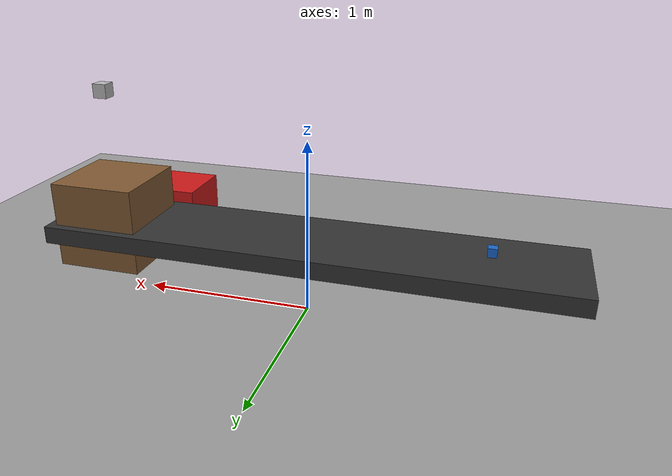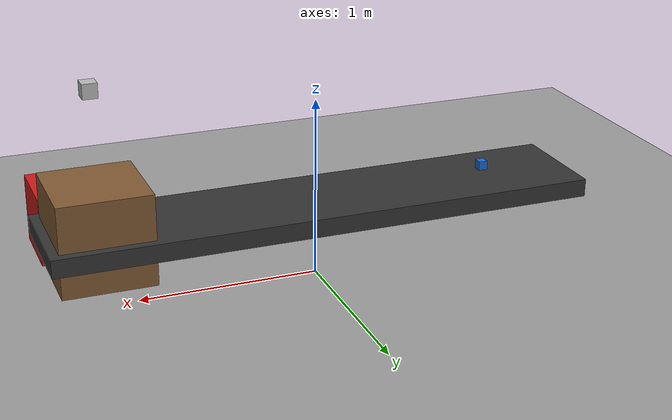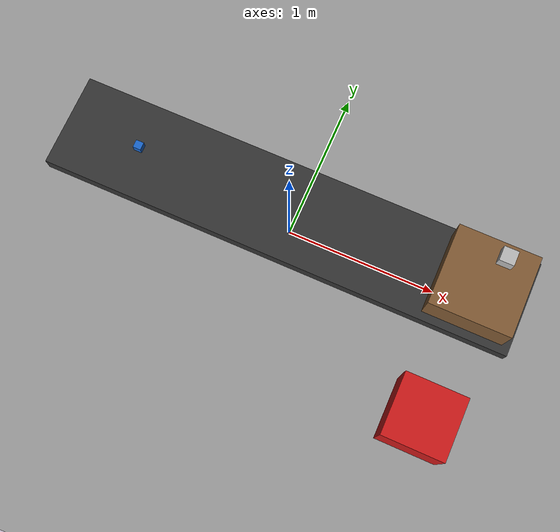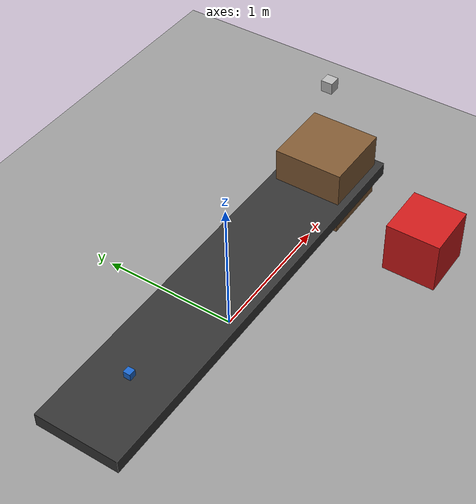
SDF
<?xml version="1.0" ?>
<sdf version="1.9">
  <world name="assembly_station">

    <physics name="1ms" type="ignored">
      <max_step_size>0.001</max_step_size>
      <real_time_factor>1.0</real_time_factor>
    </physics>

    <plugin filename="gz-sim-physics-system" name="gz::sim::systems::Physics" />
    <plugin filename="gz-sim-scene-broadcaster-system" name="gz::sim::systems::SceneBroadcaster" />
    <plugin filename="gz-sim-sensors-system" name="gz::sim::systems::Sensors">
      <render_engine>ogre2</render_engine>
    </plugin>
    <plugin filename="gz-sim-user-commands-system" name="gz::sim::systems::UserCommands" />

    <light type="directional" name="sun">
      <cast_shadows>true</cast_shadows>
      <pose>0 0 10 0 0 0</pose>
      <diffuse>0.8 0.8 0.8 1</diffuse>
      <specular>0.2 0.2 0.2 1</specular>
      <direction>-0.5 0.1 -0.9</direction>
    </light>

    <model name="ground_plane">
      <static>true</static>
      <link name="link">
        <collision name="collision">
          <geometry><plane><normal>0 0 1</normal><size>20 20</size></plane></geometry>
        </collision>
        <visual name="visual">
          <geometry><plane><normal>0 0 1</normal><size>20 20</size></plane></geometry>
          <material>
            <ambient>0.6 0.6 0.6 1</ambient>
            <diffuse>0.6 0.6 0.6 1</diffuse>
          </material>
        </visual>
      </link>
    </model>

    <!-- Conveyor belt: simplified as a static box; part motion driven by
         the PLC/Factory I/O bridge in the full deployment, or by a
         plugin-driven velocity in pure-Gazebo testing. -->
    <model name="conveyor_belt">
      <static>true</static>
      <pose>0 0 0.4 0 0 0</pose>
      <link name="belt_link">
        <collision name="collision">
          <geometry><box><size>3.0 0.6 0.1</size></box></geometry>
        </collision>
        <visual name="visual">
          <geometry><box><size>3.0 0.6 0.1</size></box></geometry>
          <material>
            <ambient>0.2 0.2 0.2 1</ambient>
            <diffuse>0.2 0.2 0.2 1</diffuse>
          </material>
        </visual>
      </link>
    </model>

    <!-- Pick station table: co-located with the conveyor_pick_point frame
         referenced by pick_place_node -->
    <model name="pick_station_table">
      <static>true</static>
      <pose>1.2 0 0.45 0 0 0</pose>
      <link name="table_link">
        <collision name="collision">
          <geometry><box><size>0.5 0.5 0.5</size></box></geometry>
        </collision>
        <visual name="visual">
          <geometry><box><size>0.5 0.5 0.5</size></box></geometry>
          <material>
            <ambient>0.5 0.35 0.2 1</ambient>
            <diffuse>0.5 0.35 0.2 1</diffuse>
          </material>
        </visual>
      </link>
    </model>

    <!-- Inspection camera mounted above the pick station -->
    <model name="inspection_camera">
      <static>true</static>
      <pose>1.2 0 1.2 0 1.5708 0</pose>
      <link name="camera_link">
        <sensor name="camera_sensor" type="camera">
          <camera>
            <horizontal_fov>1.047</horizontal_fov>
            <image>
              <width>640</width>
              <height>480</height>
              <format>R8G8B8</format>
            </image>
            <clip>
              <near>0.1</near>
              <far>10</far>
            </clip>
          </camera>
          <always_on>true</always_on>
          <update_rate>15</update_rate>
          <visualize>true</visualize>
          <topic>camera</topic>
        </sensor>
        <visual name="camera_visual">
          <geometry><box><size>0.08 0.08 0.08</size></box></geometry>
        </visual>
      </link>
    </model>

    <!-- Reject bin: destination for parts flagged fail_misaligned/fail_defect -->
    <model name="reject_bin">
      <static>true</static>
      <pose>1.2 -0.8 0.2 0 0 0</pose>
      <link name="bin_link">
        <collision name="collision">
          <geometry><box><size>0.4 0.4 0.4</size></box></geometry>
        </collision>
        <visual name="visual">
          <geometry><box><size>0.4 0.4 0.4</size></box></geometry>
          <material>
            <ambient>0.8 0.1 0.1 1</ambient>
            <diffuse>0.8 0.1 0.1 1</diffuse>
          </material>
        </visual>
      </link>
    </model>

    <!-- Sample part spawned on the conveyor for pick-and-place testing -->
    <model name="part_001">
      <pose>-1.0 0 0.5 0 0 0</pose>
      <link name="part_link">
        <inertial>
          <mass>0.05</mass>
        </inertial>
        <collision name="collision">
          <geometry><box><size>0.05 0.05 0.05</size></box></geometry>
        </collision>
        <visual name="visual">
          <geometry><box><size>0.05 0.05 0.05</size></box></geometry>
          <material>
            <ambient>0.1 0.4 0.8 1</ambient>
            <diffuse>0.1 0.4 0.8 1</diffuse>
          </material>
        </visual>
      </link>
    </model>

  </world>
</sdf>
